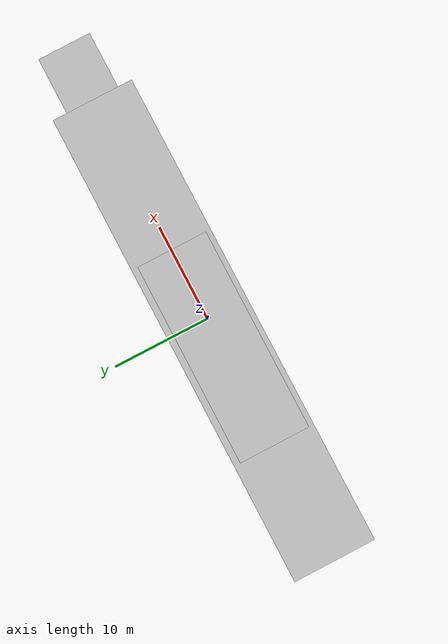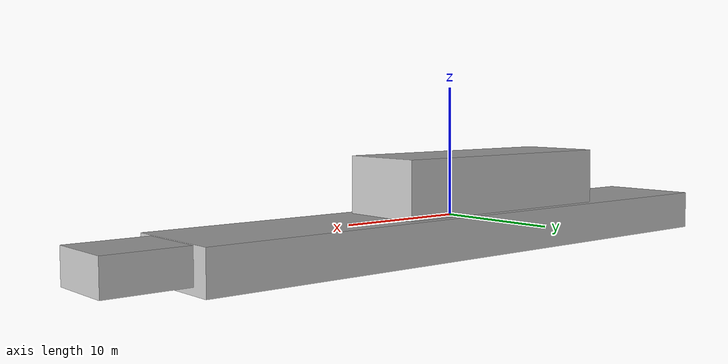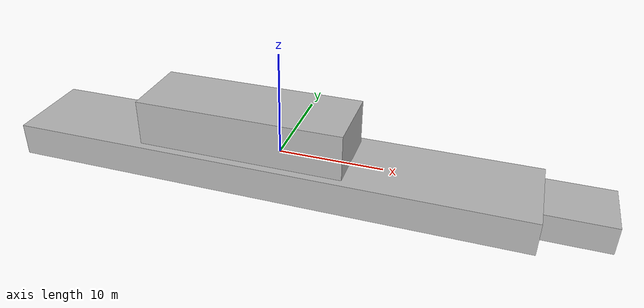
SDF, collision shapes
<?xml version='1.0' encoding='utf-8'?>
<sdf version="1.9">
  <model name="roussen_target">
    <static>false</static>
    <self_collide>false</self_collide>
    <link name="base_link">
      <inertial>
        <pose>0 0 -0.60 0 0 0</pose>
        <mass>580000</mass>
        <inertia>
          <ixx>5360000</ixx>
          <ixy>0</ixy>
          <ixz>0</ixz>
          <iyy>187000000</iyy>
          <iyz>0</iyz>
          <izz>190000000</izz>
        </inertia>
      </inertial>
      <visual name="ship_visual">
        <geometry>
          <mesh>
            <uri>model://roussen_target/meshes/roussen.obj</uri>
          </mesh>
        </geometry>
      </visual>
      <collision name="main_hull_collision">
        <pose>-1 0 -1.25 0 0 0</pose>
        <geometry>
          <box>
            <size>50 8.6 3.2</size>
          </box>
        </geometry>
      </collision>
      <collision name="bow_collision">
        <pose>25 0 -1.0 0 0 0</pose>
        <geometry>
          <box>
            <size>10 5.6 2.6</size>
          </box>
        </geometry>
      </collision>
      <collision name="superstructure_collision">
        <pose>-3 0 2.4 0 0 0</pose>
        <geometry>
          <box>
            <size>20 7.0 4.8</size>
          </box>
        </geometry>
      </collision>
    </link>
    <plugin filename="libSurface.so" name="maritime::Surface">
      <link_name>base_link</link_name>
      <hull_length>54.0</hull_length>
      <hull_radius>2.30</hull_radius>
      <fluid_level>0.0</fluid_level>
      <fluid_density>1000.0</fluid_density>
      <points>
        <point>21.0 3.2 -1.0</point>
        <point>-21.0 3.2 -1.0</point>
      </points>
      <wavefield>
        <topic>/gazebo/wavefield/parameters</topic>
      </wavefield>
    </plugin>
    <plugin filename="libSurface.so" name="maritime::Surface">
      <link_name>base_link</link_name>
      <hull_length>54.0</hull_length>
      <hull_radius>2.30</hull_radius>
      <fluid_level>0.0</fluid_level>
      <fluid_density>1000.0</fluid_density>
      <points>
        <point>21.0 -3.2 -1.0</point>
        <point>-21.0 -3.2 -1.0</point>
      </points>
      <wavefield>
        <topic>/gazebo/wavefield/parameters</topic>
      </wavefield>
    </plugin>
    <plugin filename="gz-sim-hydrodynamics-system" name="gz::sim::systems::Hydrodynamics">
      <link_name>base_link</link_name>
      <xU>-120000.0</xU>
      <xAbsU>-70000.0</xAbsU>
      <yV>-400000.0</yV>
      <yAbsV>-150000.0</yAbsV>
      <zW>-1200000.0</zW>
      <kP>-15000000.0</kP>
      <mQ>-200000000.0</mQ>
      <nR>-150000000.0</nR>
      <nAbsR>-50000000.0</nAbsR>
    </plugin>
    <plugin filename="gz-sim-velocity-control-system" name="gz::sim::systems::VelocityControl" />
    <plugin filename="gz-sim-pose-publisher-system" name="gz::sim::systems::PosePublisher">
      <publish_model_pose>true</publish_model_pose>
      <publish_link_pose>false</publish_link_pose>
      <publish_visual_pose>false</publish_visual_pose>
      <publish_collision_pose>false</publish_collision_pose>
      <publish_sensor_pose>false</publish_sensor_pose>
      <publish_nested_model_pose>false</publish_nested_model_pose>
      <use_pose_vector_msg>true</use_pose_vector_msg>
      <static_publisher>false</static_publisher>
      <update_frequency>20</update_frequency>
    </plugin>
  </model>
</sdf>
